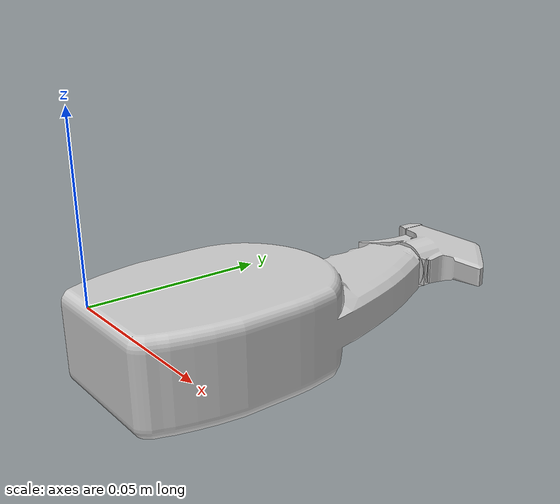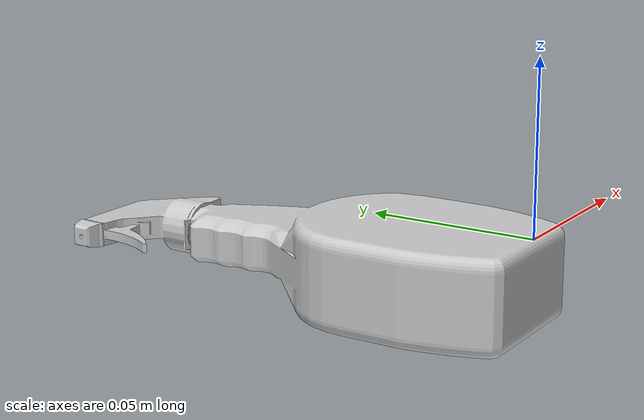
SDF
<?xml version="1.0" ?>
<sdf version="1.4">
  <model name="z_windexbottle">
    <link name="z_windexbottle_link">
      <inertial>
        <pose>-0.00 0.0 -0.005 0 0 0</pose>
        <mass>0.8</mass>
        <inertia>
          <ixx>0.001667</ixx>
	  <ixy>0.0</ixy>
	  <ixz>0.0</ixz>
	  <iyy>0.001667</iyy>
	  <iyz>0.0</iyz>
	  <izz>0.001667</izz>
	</inertia>
      </inertial>

      <visual name="z_windexbottle_visual">
        <pose>0 0 -0.0150 -1.57079632679489 0 0 </pose>
        <material>
	  <lighting>1</lighting>
	  <ambient>0.2 0.2 0.2 1</ambient>
	  <diffuse>0.8 0.8 0.8 1</diffuse>
	  <specular>0.2 0.2 0.2 1</specular>
	  <emissive>0.55 0.55 0.55 1</emissive>
          <script>
            <uri>model://z_windexbottle/materials/scripts</uri>
            <uri>model://z_windexbottle/materials/textures</uri>
            <name>Z_windexbottle/Image</name>
          </script>
        </material>
        <geometry>
          <mesh>
            <uri>model://z_windexbottle/meshes/z_windexbottle.dae</uri>
	    <scale>0.45 0.45 0.45</scale>
          </mesh>
        </geometry>
      </visual>

      <collision name="z_windexbottle_collision">
        <pose>0.0 0.0 0.02 0.0 0.0 0.0</pose>
        <geometry>
	  <cylinder>
	    <radius>0.012</radius>
	    <length>0.04</length>
	  </cylinder>
        </geometry>
        <max_contacts>10</max_contacts>
        <surface>
          <contact>
	    <ode>
	      <max_vel>0.000</max_vel>
            </ode>
          </contact>
          <bounce/>
          <friction>
            <torsional>
              <ode/>
            </torsional>
            <ode>
              <mu>1</mu>
              <mu2>1</mu2>
            </ode>
          </friction>
        </surface>
      </collision>
      <self_collide>0</self_collide>
      <kinematic>0</kinematic>
    </link>
  </model>
</sdf>
